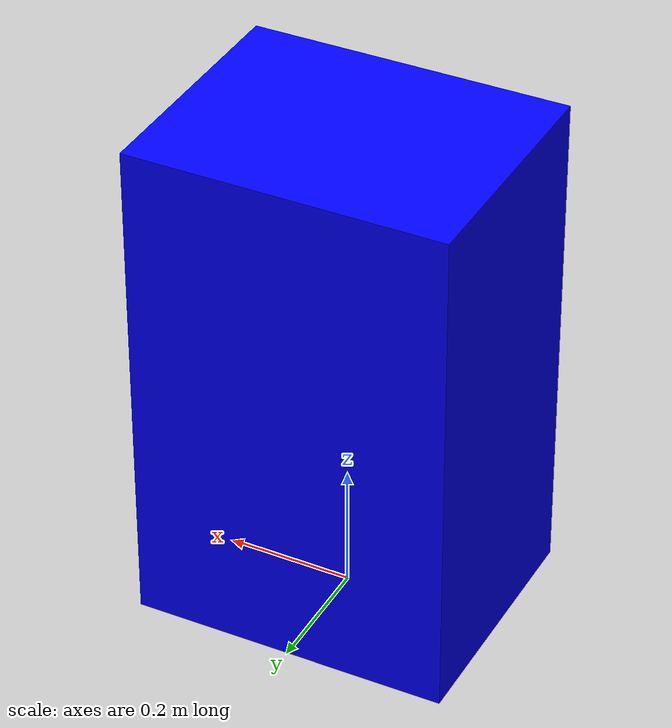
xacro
<robot name="my_robot">

  <!-- Base Link -->
  <link name="base_link">
    <visual>
      <origin xyz="0 0 0.4"/>
      <geometry>
        <box size="0.5 0.395 0.8"/>
      </geometry>
      <material name="blue">
        <color rgba="0 0 1 1"/>
      </material>
    </visual>
  </link>

  <!-- Laser -->
  <link name="laser">
    <visual>
      <geometry>
        <cylinder radius="0.05" length="0.05"/>
      </geometry>
      <material name="red">
        <color rgba="1 0 0 1"/>
      </material>
    </visual>
  </link>

  <!-- Joints -->

  <joint name="laser_joint" type="fixed">
  <!--continuous-->
    <parent link="base_link"/>
    <child link="laser"/>
    <origin xyz="0 0 0.2" rpy="0 0 0"/>
  </joint>

</robot>
